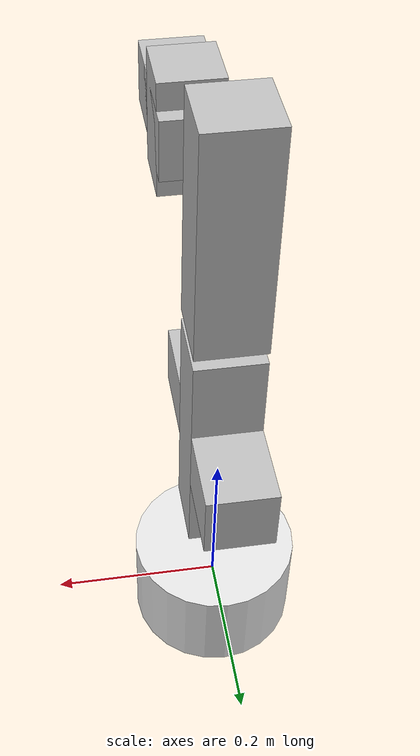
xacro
<?xml version="1.0"?>
<!--
  UFACTORY xArm6 — joint names match xarm_ros2 (joint1..joint6).
  For full meshes/DH, install xarm_ros2 and launch with use_official_urdf:=true
-->
<robot xmlns:xacro="http://www.ros.org/wiki/xacro" name="xarm6">

  <xacro:arg name="use_official_urdf" default="false"/>
  <xacro:arg name="add_gripper" default="false"/>

  <xacro:if value="$(arg use_official_urdf)">
    <xacro:include filename="$(find xarm_description)/urdf/xarm6/xarm6.urdf.xacro"/>
  </xacro:if>

  <xacro:unless value="$(arg use_official_urdf)">
    <!-- Simplified xArm6 kinematic chain (612 mm reach), compatible with xarm_ros2 joint names -->

    <link name="world"/>
    <link name="link_base">
      <visual>
        <geometry><cylinder length="0.12" radius="0.10"/></geometry>
        <material name="white"><color rgba="0.9 0.9 0.9 1"/></material>
      </visual>
      <collision><geometry><cylinder length="0.12" radius="0.10"/></geometry></collision>
      <inertial><mass value="2.7"/><inertia ixx="0.01" ixy="0" ixz="0" iyy="0.01" iyz="0" izz="0.01"/></inertial>
    </link>
    <joint name="world_joint" type="fixed">
      <parent link="world"/><child link="link_base"/>
    </joint>

    <xacro:macro name="xarm_link" params="name length mass">
      <link name="${name}">
        <visual>
          <geometry><box size="0.08 ${length} 0.08"/></geometry>
          <material name="grey"><color rgba="0.75 0.75 0.75 1"/></material>
        </visual>
        <collision><geometry><box size="0.08 ${length} 0.08"/></geometry></collision>
        <inertial><mass value="${mass}"/><inertia ixx="0.01" ixy="0" ixz="0" iyy="0.01" iyz="0" izz="0.01"/></inertial>
      </link>
    </xacro:macro>

    <xacro:macro name="revolute" params="name parent child xyz rpy lower upper">
      <joint name="${name}" type="revolute">
        <parent link="${parent}"/><child link="${child}"/>
        <origin xyz="${xyz}" rpy="${rpy}"/>
        <axis xyz="0 0 1"/>
        <limit lower="${lower}" upper="${upper}" effort="50" velocity="3.14"/>
      </joint>
    </xacro:macro>

    <xacro:xarm_link name="link1" length="0.267" mass="2.0"/>
    <xacro:xarm_link name="link2" length="0.288" mass="2.0"/>
    <xacro:xarm_link name="link3" length="0.270" mass="1.5"/>
    <xacro:xarm_link name="link4" length="0.150" mass="1.0"/>
    <xacro:xarm_link name="link5" length="0.120" mass="0.8"/>
    <xacro:xarm_link name="link6" length="0.080" mass="0.5"/>

    <xacro:revolute name="joint1" parent="link_base" child="link1" xyz="0 0 0.267" rpy="0 0 0" lower="-6.283" upper="6.283"/>
    <xacro:revolute name="joint2" parent="link1" child="link2" xyz="0 0 0" rpy="1.5708 0 0" lower="-2.059" upper="2.0944"/>
    <xacro:revolute name="joint3" parent="link2" child="link3" xyz="0 0.293 0" rpy="0 0 0" lower="-3.927" upper="0.19198"/>
    <xacro:revolute name="joint4" parent="link3" child="link4" xyz="0 -0.0525 0.270" rpy="0 0 0" lower="-6.283" upper="6.283"/>
    <xacro:revolute name="joint5" parent="link4" child="link5" xyz="0 0 0" rpy="1.5708 0 0" lower="-1.69297" upper="3.14159"/>
    <xacro:revolute name="joint6" parent="link5" child="link6" xyz="0 0.0775 0" rpy="0 0 0" lower="-6.283" upper="6.283"/>

    <link name="link_eef">
      <visual><geometry><sphere radius="0.02"/></geometry>
        <material name="orange"><color rgba="1 0.5 0 1"/></material>
      </visual>
    </link>
    <joint name="joint_eef" type="fixed">
      <parent link="link6"/><child link="link_eef"/>
      <origin xyz="0 0 0.08" rpy="0 0 0"/>
    </joint>

    <xacro:arg name="add_gripper" default="true"/>
    <xacro:if value="$(arg add_gripper)">
      <link name="xarm_gripper_base_link">
        <visual><geometry><box size="0.04 0.05 0.04"/></geometry></visual>
      </link>
      <joint name="gripper_fix" type="fixed">
        <parent link="link_eef"/><child link="xarm_gripper_base_link"/>
        <origin xyz="0 0 0.02" rpy="0 0 0"/>
      </joint>
      <link name="left_outer_knuckle"/>
      <link name="right_outer_knuckle"/>
      <joint name="drive_joint" type="revolute">
        <parent link="xarm_gripper_base_link"/><child link="left_outer_knuckle"/>
        <origin xyz="0 0 0.02" rpy="0 0 0"/>
        <axis xyz="1 0 0"/>
        <limit lower="0" upper="0.86" effort="10" velocity="2"/>
      </joint>
      <joint name="right_drive_joint" type="revolute">
        <parent link="xarm_gripper_base_link"/><child link="right_outer_knuckle"/>
        <origin xyz="0 0 0.02" rpy="0 0 0"/>
        <axis xyz="-1 0 0"/>
        <limit lower="0" upper="0.86" effort="10" velocity="2"/>
        <mimic joint="drive_joint" multiplier="1" offset="0"/>
      </joint>
    </xacro:if>

    <!-- RealSense D455 on wrist (common xArm setup) -->
    <link name="camera_link"/>
    <joint name="camera_mount" type="fixed">
      <parent link="link_eef"/><child link="camera_link"/>
      <origin xyz="0.05 0 0.03" rpy="0 0.785 0"/>
    </joint>
  </xacro:unless>

</robot>
